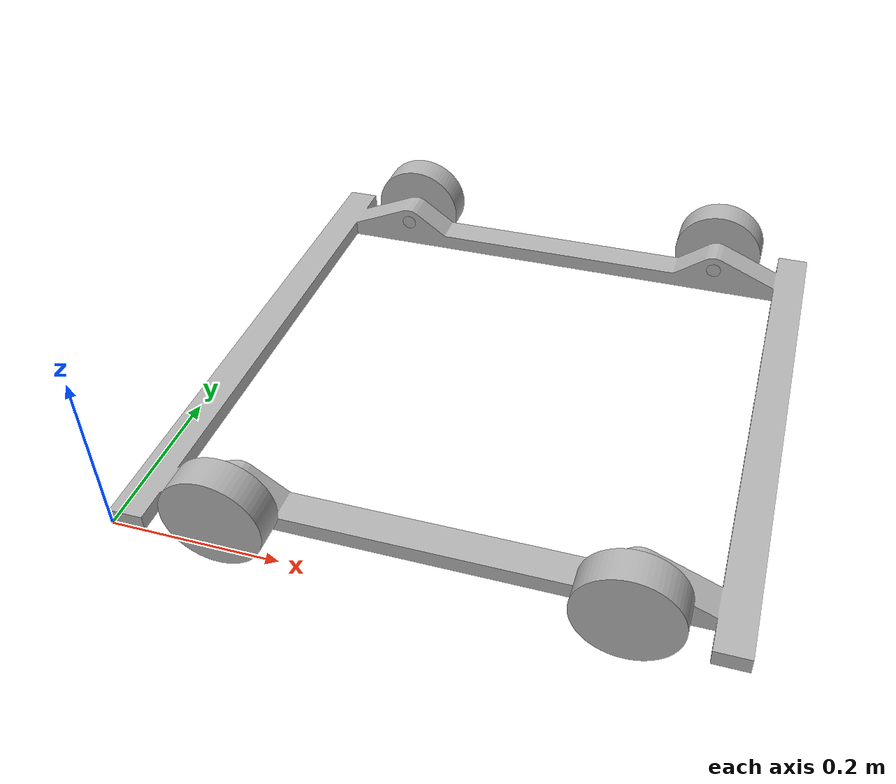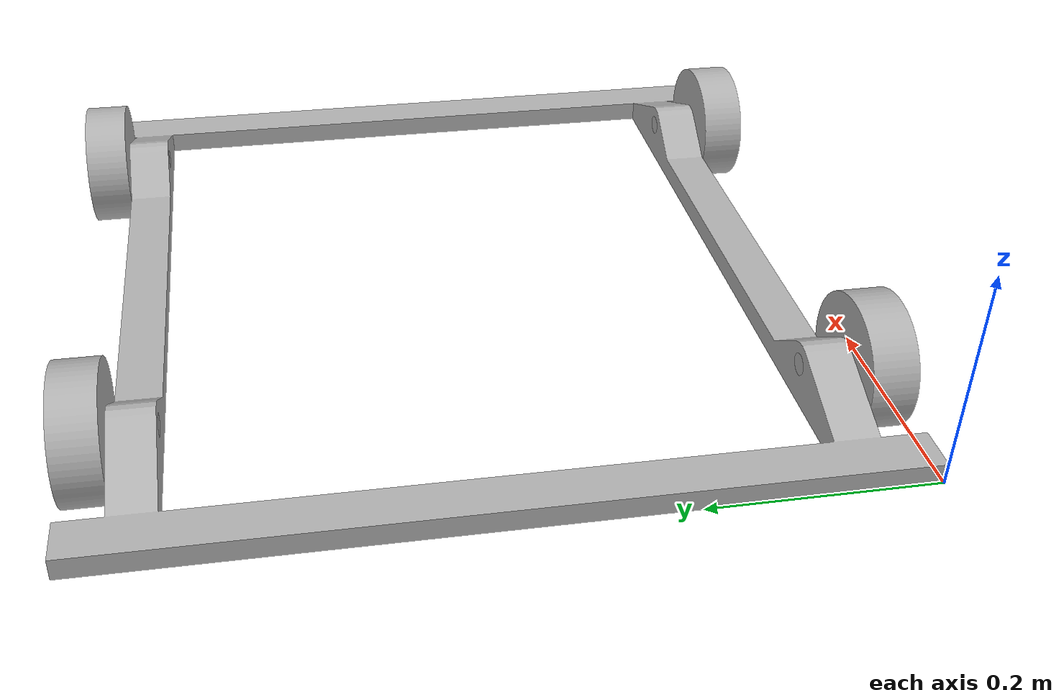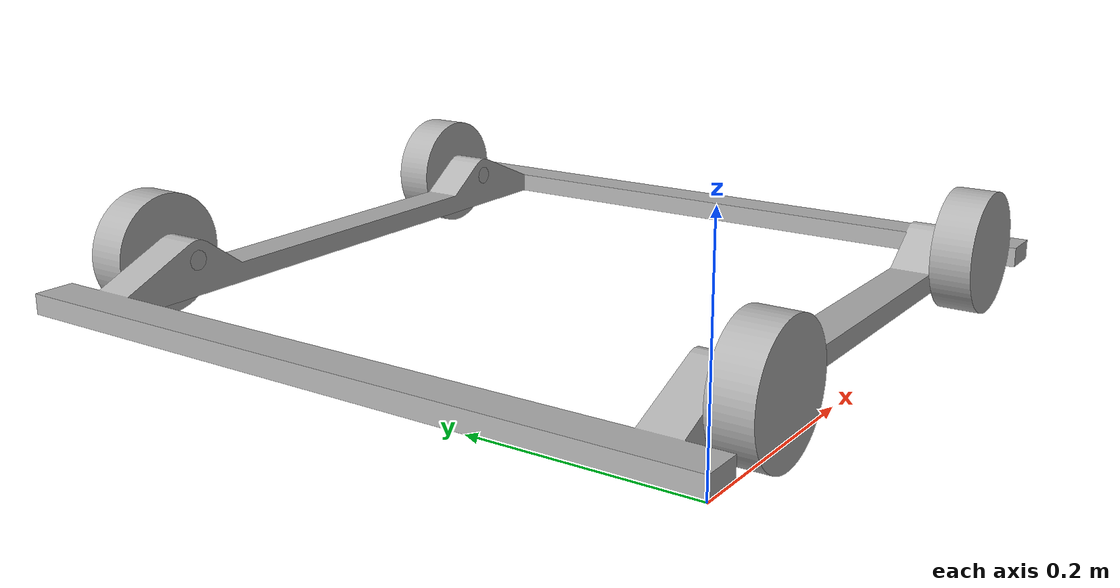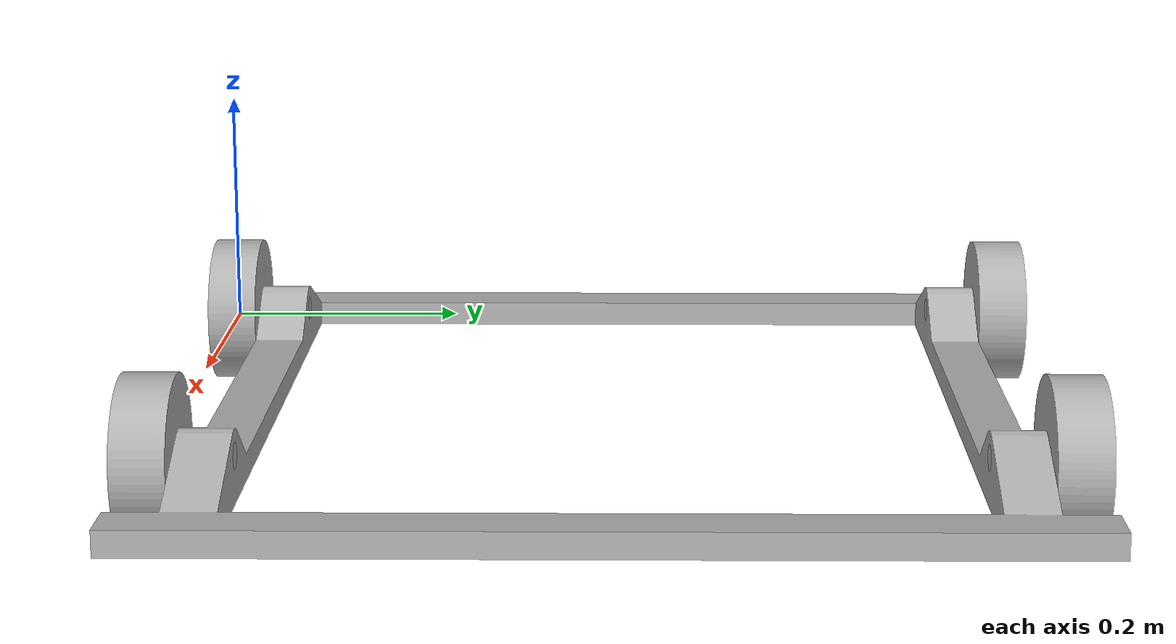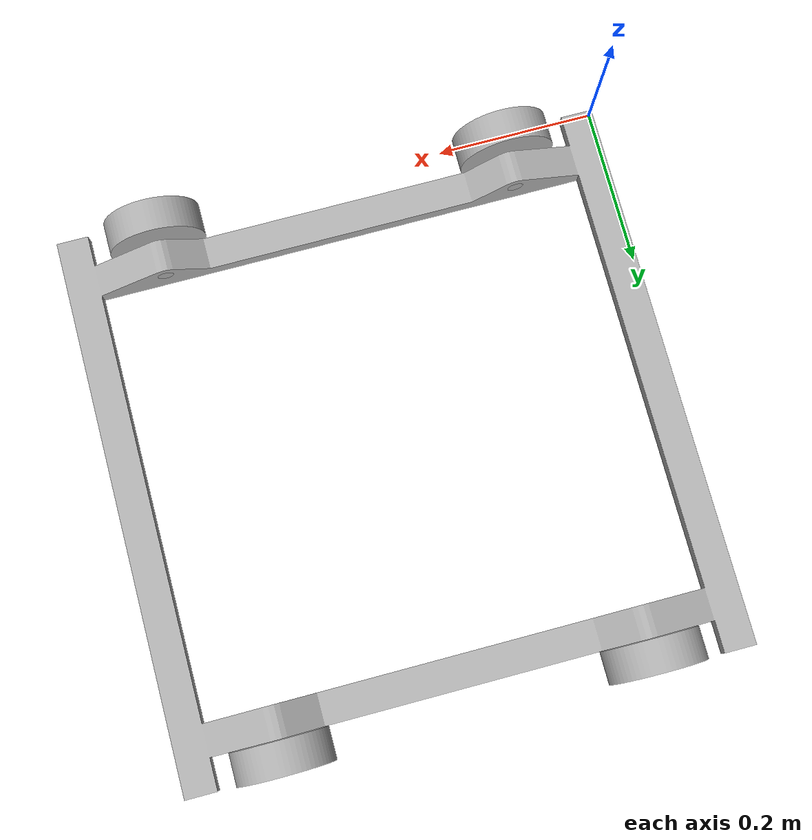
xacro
<?xml version="1.0" ?>
<robot name="ROBOT-URDF" xmlns:xacro="http://www.ros.org/wiki/xacro">

<xacro:include filename="$(find ROBOT-URDF_description)/urdf/materials.xacro" />
<xacro:include filename="$(find ROBOT-URDF_description)/urdf/ROBOT-URDF.trans" />
<xacro:include filename="$(find ROBOT-URDF_description)/urdf/ROBOT-URDF.gazebo" />
<link name="base_link">
  <inertial>
    <origin xyz="0.35 0.3500000000000001 0.01329820078764838" rpy="0 0 0"/>
    <mass value="19.48807099803493"/>
    <inertia ixx="1.261972" iyy="1.374146" izz="2.632119" ixy="0.0" iyz="-0.0" ixz="-0.0"/>
  </inertial>
  <visual>
    <origin xyz="0 0 0" rpy="0 0 0"/>
    <geometry>
      <mesh filename="package://ROBOT-URDF_description/meshes/base_link.stl" scale="0.001 0.001 0.001"/>
    </geometry>
    <material name="silver"/>
  </visual>
  <collision>
    <origin xyz="0 0 0" rpy="0 0 0"/>
    <geometry>
      <mesh filename="package://ROBOT-URDF_description/meshes/base_link.stl" scale="0.001 0.001 0.001"/>
    </geometry>
  </collision>
</link>

<link name="Wheel_1">
  <inertial>
    <origin xyz="2.8255175976710234e-14 -0.018918918918918916 -4.163336342344337e-17" rpy="0 0 0"/>
    <mass value="3.649902344940618"/>
    <inertia ixx="0.003839" iyy="0.006397" izz="0.003839" ixy="0.0" iyz="-0.0" ixz="-0.0"/>
  </inertial>
  <visual>
    <origin xyz="-0.125 -0.04 -0.035" rpy="0 0 0"/>
    <geometry>
      <mesh filename="package://ROBOT-URDF_description/meshes/Wheel_1.stl" scale="0.001 0.001 0.001"/>
    </geometry>
    <material name="silver"/>
  </visual>
  <collision>
    <origin xyz="-0.125 -0.04 -0.035" rpy="0 0 0"/>
    <geometry>
      <mesh filename="package://ROBOT-URDF_description/meshes/Wheel_1.stl" scale="0.001 0.001 0.001"/>
    </geometry>
  </collision>
</link>

<link name="Wheel_2">
  <inertial>
    <origin xyz="2.8310687127941492e-14 -0.018918918918918923 -4.163336342344337e-17" rpy="0 0 0"/>
    <mass value="3.649902344940618"/>
    <inertia ixx="0.003839" iyy="0.006397" izz="0.003839" ixy="0.0" iyz="-0.0" ixz="-0.0"/>
  </inertial>
  <visual>
    <origin xyz="-0.575 -0.04 -0.035" rpy="0 0 0"/>
    <geometry>
      <mesh filename="package://ROBOT-URDF_description/meshes/Wheel_2.stl" scale="0.001 0.001 0.001"/>
    </geometry>
    <material name="silver"/>
  </visual>
  <collision>
    <origin xyz="-0.575 -0.04 -0.035" rpy="0 0 0"/>
    <geometry>
      <mesh filename="package://ROBOT-URDF_description/meshes/Wheel_2.stl" scale="0.001 0.001 0.001"/>
    </geometry>
  </collision>
</link>

<link name="Wheel_4">
  <inertial>
    <origin xyz="2.839395385478838e-14 0.018918918918918837 2.7755575615628914e-17" rpy="0 0 0"/>
    <mass value="3.649902344940618"/>
    <inertia ixx="0.003839" iyy="0.006397" izz="0.003839" ixy="-0.0" iyz="0.0" ixz="0.0"/>
  </inertial>
  <visual>
    <origin xyz="-0.125 -0.66 -0.035" rpy="0 0 0"/>
    <geometry>
      <mesh filename="package://ROBOT-URDF_description/meshes/Wheel_4.stl" scale="0.001 0.001 0.001"/>
    </geometry>
    <material name="silver"/>
  </visual>
  <collision>
    <origin xyz="-0.125 -0.66 -0.035" rpy="0 0 0"/>
    <geometry>
      <mesh filename="package://ROBOT-URDF_description/meshes/Wheel_4.stl" scale="0.001 0.001 0.001"/>
    </geometry>
  </collision>
</link>

<link name="Wheel_3">
  <inertial>
    <origin xyz="2.8310687127941492e-14 0.018918918918918837 2.7755575615628914e-17" rpy="0 0 0"/>
    <mass value="3.649902344940618"/>
    <inertia ixx="0.003839" iyy="0.006397" izz="0.003839" ixy="-0.0" iyz="0.0" ixz="-0.0"/>
  </inertial>
  <visual>
    <origin xyz="-0.575 -0.66 -0.035" rpy="0 0 0"/>
    <geometry>
      <mesh filename="package://ROBOT-URDF_description/meshes/Wheel_3.stl" scale="0.001 0.001 0.001"/>
    </geometry>
    <material name="silver"/>
  </visual>
  <collision>
    <origin xyz="-0.575 -0.66 -0.035" rpy="0 0 0"/>
    <geometry>
      <mesh filename="package://ROBOT-URDF_description/meshes/Wheel_3.stl" scale="0.001 0.001 0.001"/>
    </geometry>
  </collision>
</link>

<joint name="旋转 1" type="continuous">
  <origin xyz="0.125 0.04 0.035" rpy="0 0 0"/>
  <parent link="base_link"/>
  <child link="Wheel_1"/>
  <axis xyz="0.0 1.0 0.0"/>
</joint>

<joint name="旋转 2" type="continuous">
  <origin xyz="0.575 0.04 0.035" rpy="0 0 0"/>
  <parent link="base_link"/>
  <child link="Wheel_2"/>
  <axis xyz="0.0 1.0 0.0"/>
</joint>

<joint name="旋转 3" type="continuous">
  <origin xyz="0.125 0.66 0.035" rpy="0 0 0"/>
  <parent link="base_link"/>
  <child link="Wheel_4"/>
  <axis xyz="0.0 -1.0 0.0"/>
</joint>

<joint name="旋转 4" type="continuous">
  <origin xyz="0.575 0.66 0.035" rpy="0 0 0"/>
  <parent link="base_link"/>
  <child link="Wheel_3"/>
  <axis xyz="0.0 -1.0 0.0"/>
</joint>

</robot>

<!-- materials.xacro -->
<robot name="ROBOT-URDF" xmlns:xacro="http://www.ros.org/wiki/xacro" >

<material name="silver">
  <color rgba="0.700 0.700 0.700 1.000"/>
</material>

</robot>

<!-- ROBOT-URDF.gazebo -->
<robot name="ROBOT-URDF" xmlns:xacro="http://www.ros.org/wiki/xacro" >

<xacro:property name="body_color" value="Gazebo/Silver" />

<gazebo>
  <plugin name="control" filename="libgazebo_ros_control.so"/>
</gazebo>
<gazebo reference="base_link">
  <material>${body_color}</material>
  <mu1>0.2</mu1>
  <mu2>0.2</mu2>
  <selfCollide>true</selfCollide>
  <gravity>true</gravity>
</gazebo>

<gazebo reference="Wheel_1">
  <material>${body_color}</material>
  <mu1>0.2</mu1>
  <mu2>0.2</mu2>
  <selfCollide>true</selfCollide>
</gazebo>

<gazebo reference="Wheel_2">
  <material>${body_color}</material>
  <mu1>0.2</mu1>
  <mu2>0.2</mu2>
  <selfCollide>true</selfCollide>
</gazebo>

<gazebo reference="Wheel_4">
  <material>${body_color}</material>
  <mu1>0.2</mu1>
  <mu2>0.2</mu2>
  <selfCollide>true</selfCollide>
</gazebo>

<gazebo reference="Wheel_3">
  <material>${body_color}</material>
  <mu1>0.2</mu1>
  <mu2>0.2</mu2>
  <selfCollide>true</selfCollide>
</gazebo>

</robot>
